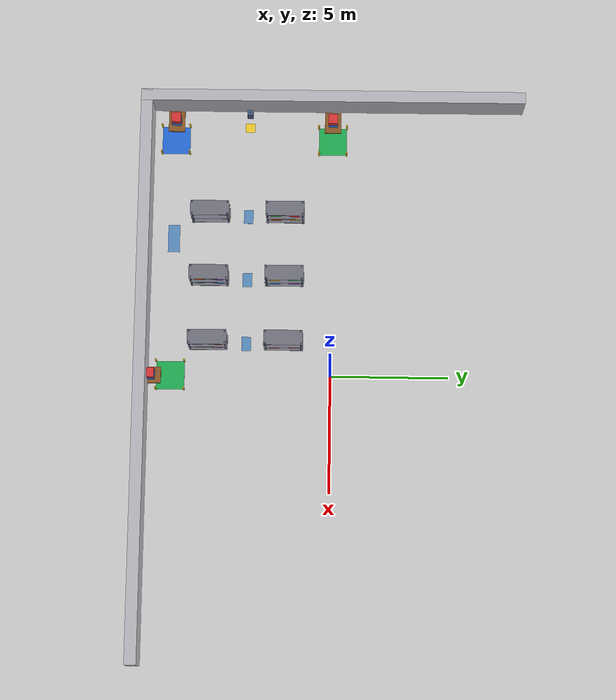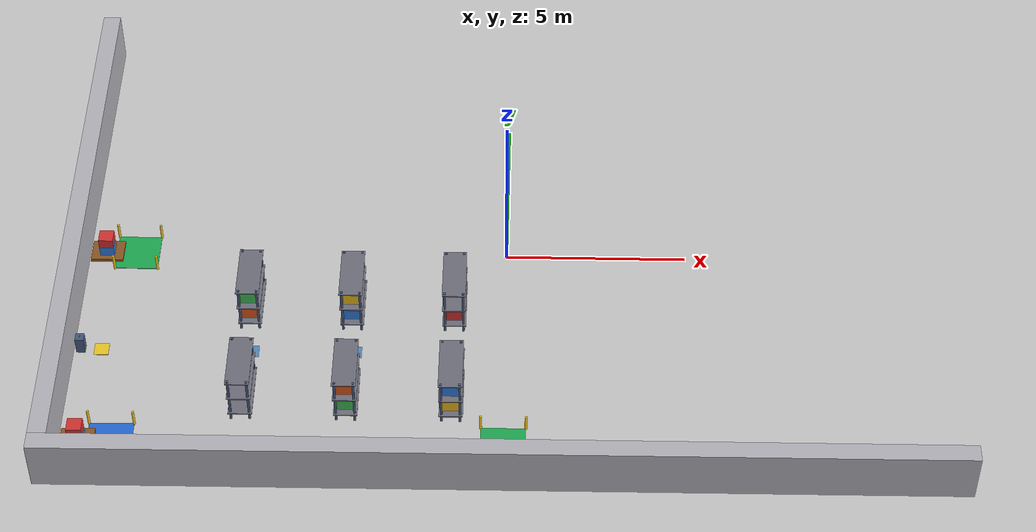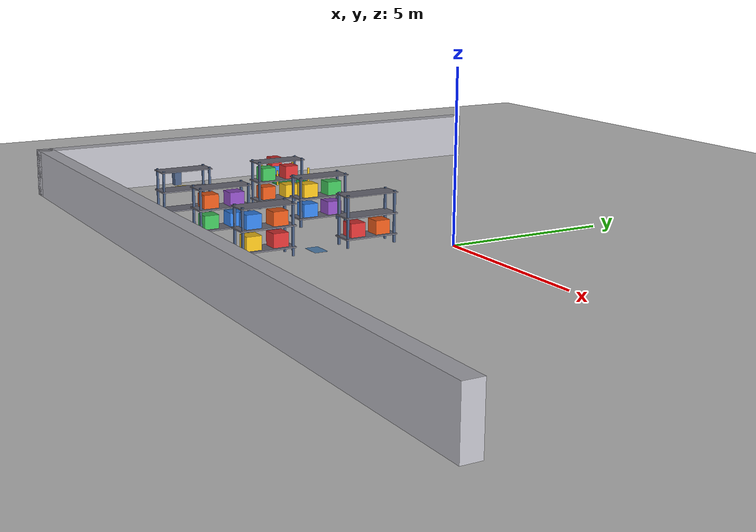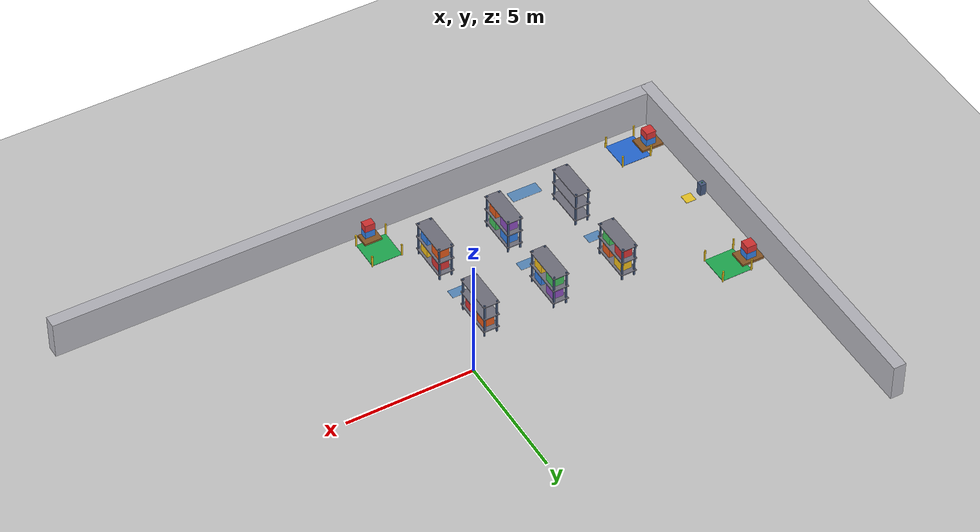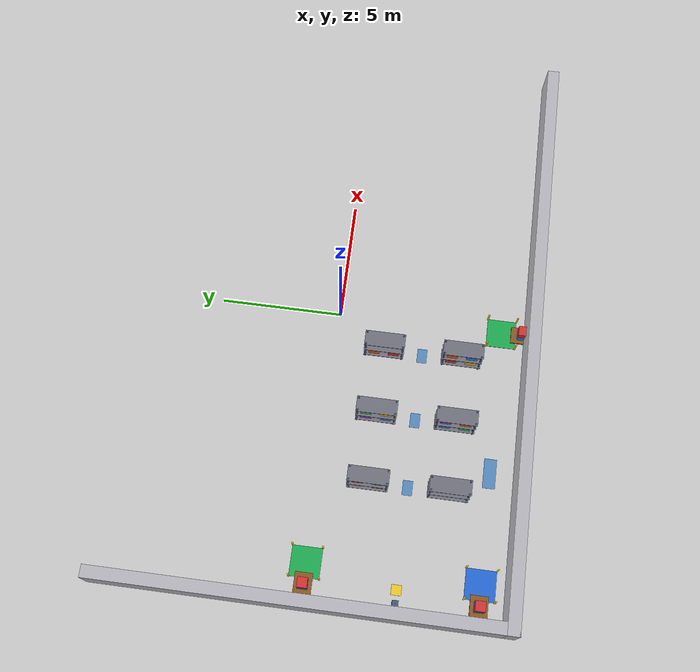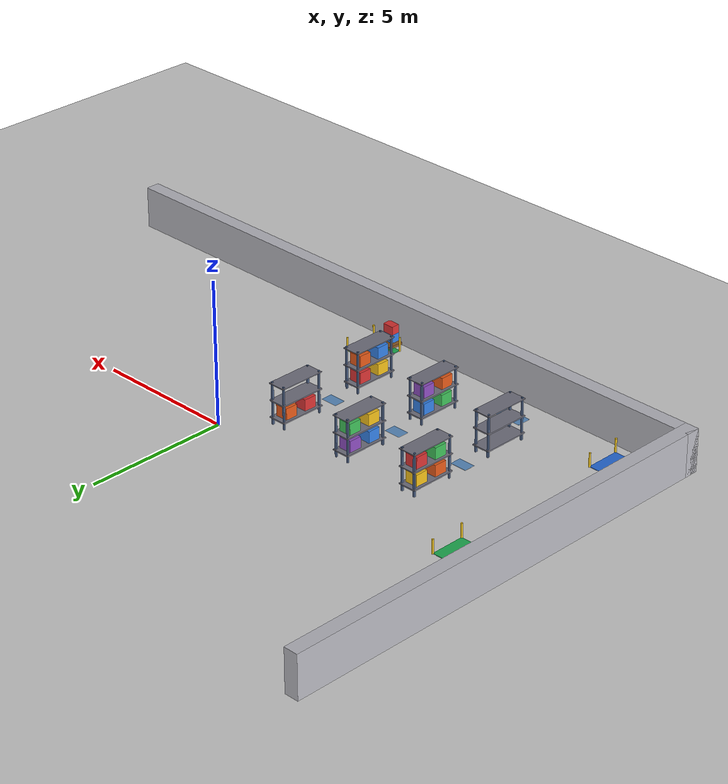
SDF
<sdf version="1.6">
 <world name="warehouse">
  <include><uri>model://ground_plane</uri></include>
  <include><uri>model://sun</uri></include>
  <model name="wall_west">
   <static>true</static>
   <pose>-12.0 0 0.75 0 0 0</pose>
   <link name="wall">
    <visual name="wall_v">
     <geometry><box><size>0.5 16.5 1.5</size></box></geometry>
     <material>
      <ambient>0.72 0.72 0.75 1.0</ambient>
      <diffuse>0.72 0.72 0.75 1.0</diffuse>
      <specular>0.1 0.1 0.1 1</specular>
     </material>
    </visual>
    <collision name="wall_c"><geometry><box><size>0.5 16.5 1.5</size></box></geometry></collision>
   </link>
  </model>
  <model name="wall_south">
   <static>true</static>
   <pose>0 -8.0 0.75 0 0 0</pose>
   <link name="wall">
    <visual name="wall_v">
     <geometry><box><size>24.5 0.5 1.5</size></box></geometry>
     <material>
      <ambient>0.72 0.72 0.75 1.0</ambient>
      <diffuse>0.72 0.72 0.75 1.0</diffuse>
      <specular>0.1 0.1 0.1 1</specular>
     </material>
    </visual>
    <collision name="wall_c"><geometry><box><size>24.5 0.5 1.5</size></box></geometry></collision>
   </link>
  </model>
  <model name="rack_r2_c0">
   <static>true</static>
   <pose>-7.0 -2.0 0 0 0 0</pose>
   <link name="col">
    <collision name="col_c">
     <pose>0 0 0.75 0 0 0</pose>
     <geometry><box><size>0.6 1.0 1.5</size></box></geometry>
    </collision>
   </link>
   <link name="post_0_25_0_75">
    <visual name="post_0_25_0_75_v">
     <pose>0.25 0.75 0.75 0 0 0</pose>
     <geometry><box><size>0.06 0.06 1.5</size></box></geometry>
     <material>
      <ambient>0.28 0.36 0.5 1.0</ambient>
      <diffuse>0.28 0.36 0.5 1.0</diffuse>
      <specular>0.1 0.1 0.1 1</specular>
     </material>
    </visual>
   </link>
   <link name="post_0_25_m0_75">
    <visual name="post_0_25_m0_75_v">
     <pose>0.25 -0.75 0.75 0 0 0</pose>
     <geometry><box><size>0.06 0.06 1.5</size></box></geometry>
     <material>
      <ambient>0.28 0.36 0.5 1.0</ambient>
      <diffuse>0.28 0.36 0.5 1.0</diffuse>
      <specular>0.1 0.1 0.1 1</specular>
     </material>
    </visual>
   </link>
   <link name="post_m0_25_0_75">
    <visual name="post_m0_25_0_75_v">
     <pose>-0.25 0.75 0.75 0 0 0</pose>
     <geometry><box><size>0.06 0.06 1.5</size></box></geometry>
     <material>
      <ambient>0.28 0.36 0.5 1.0</ambient>
      <diffuse>0.28 0.36 0.5 1.0</diffuse>
      <specular>0.1 0.1 0.1 1</specular>
     </material>
    </visual>
   </link>
   <link name="post_m0_25_m0_75">
    <visual name="post_m0_25_m0_75_v">
     <pose>-0.25 -0.75 0.75 0 0 0</pose>
     <geometry><box><size>0.06 0.06 1.5</size></box></geometry>
     <material>
      <ambient>0.28 0.36 0.5 1.0</ambient>
      <diffuse>0.28 0.36 0.5 1.0</diffuse>
      <specular>0.1 0.1 0.1 1</specular>
     </material>
    </visual>
   </link>
   <link name="deck_low">
    <visual name="deck_low_v">
     <pose>0 0 0.25 0 0 0</pose>
     <geometry><box><size>0.64 1.6400000000000001 0.04</size></box></geometry>
     <material>
      <ambient>0.45 0.45 0.5 1.0</ambient>
      <diffuse>0.45 0.45 0.5 1.0</diffuse>
      <specular>0.1 0.1 0.1 1</specular>
     </material>
    </visual>
   </link>
   <link name="deck_mid">
    <visual name="deck_mid_v">
     <pose>0 0 0.85 0 0 0</pose>
     <geometry><box><size>0.64 1.6400000000000001 0.04</size></box></geometry>
     <material>
      <ambient>0.45 0.45 0.5 1.0</ambient>
      <diffuse>0.45 0.45 0.5 1.0</diffuse>
      <specular>0.1 0.1 0.1 1</specular>
     </material>
    </visual>
   </link>
   <link name="top_beam">
    <visual name="top_beam_v">
     <pose>0 0 1.45 0 0 0</pose>
     <geometry><box><size>0.64 1.6400000000000001 0.03</size></box></geometry>
     <material>
      <ambient>0.45 0.45 0.5 1.0</ambient>
      <diffuse>0.45 0.45 0.5 1.0</diffuse>
      <specular>0.1 0.1 0.1 1</specular>
     </material>
    </visual>
   </link>
   <link name="box_l1">
    <visual name="box_l1_v">
     <pose>0 0.4 0.47 0 0 0</pose>
     <geometry><box><size>0.45 0.45 0.4</size></box></geometry>
     <material>
      <ambient>0.95 0.75 0.1 1.0</ambient>
      <diffuse>0.95 0.75 0.1 1.0</diffuse>
      <specular>0.1 0.1 0.1 1</specular>
     </material>
    </visual>
   </link>
   <link name="box_l2">
    <visual name="box_l2_v">
     <pose>0 -0.4 0.47 0 0 0</pose>
     <geometry><box><size>0.45 0.45 0.4</size></box></geometry>
     <material>
      <ambient>0.9 0.35 0.1 1.0</ambient>
      <diffuse>0.9 0.35 0.1 1.0</diffuse>
      <specular>0.1 0.1 0.1 1</specular>
     </material>
    </visual>
   </link>
   <link name="box_h1">
    <visual name="box_h1_v">
     <pose>0 0.4 1.07 0 0 0</pose>
     <geometry><box><size>0.45 0.45 0.4</size></box></geometry>
     <material>
      <ambient>0.85 0.2 0.2 1.0</ambient>
      <diffuse>0.85 0.2 0.2 1.0</diffuse>
      <specular>0.1 0.1 0.1 1</specular>
     </material>
    </visual>
   </link>
   <link name="box_h2">
    <visual name="box_h2_v">
     <pose>0 -0.4 1.07 0 0 0</pose>
     <geometry><box><size>0.45 0.45 0.4</size></box></geometry>
     <material>
      <ambient>0.25 0.75 0.35 1.0</ambient>
      <diffuse>0.25 0.75 0.35 1.0</diffuse>
      <specular>0.1 0.1 0.1 1</specular>
     </material>
    </visual>
   </link>
  </model>
  <model name="rack_r2_c1">
   <static>true</static>
   <pose>-4.2 -2.0 0 0 0 0</pose>
   <link name="col">
    <collision name="col_c">
     <pose>0 0 0.75 0 0 0</pose>
     <geometry><box><size>0.6 1.6 1.5</size></box></geometry>
    </collision>
   </link>
   <link name="post_0_25_0_75">
    <visual name="post_0_25_0_75_v">
     <pose>0.25 0.75 0.75 0 0 0</pose>
     <geometry><box><size>0.06 0.06 1.5</size></box></geometry>
     <material>
      <ambient>0.28 0.36 0.5 1.0</ambient>
      <diffuse>0.28 0.36 0.5 1.0</diffuse>
      <specular>0.1 0.1 0.1 1</specular>
     </material>
    </visual>
   </link>
   <link name="post_0_25_m0_75">
    <visual name="post_0_25_m0_75_v">
     <pose>0.25 -0.75 0.75 0 0 0</pose>
     <geometry><box><size>0.06 0.06 1.5</size></box></geometry>
     <material>
      <ambient>0.28 0.36 0.5 1.0</ambient>
      <diffuse>0.28 0.36 0.5 1.0</diffuse>
      <specular>0.1 0.1 0.1 1</specular>
     </material>
    </visual>
   </link>
   <link name="post_m0_25_0_75">
    <visual name="post_m0_25_0_75_v">
     <pose>-0.25 0.75 0.75 0 0 0</pose>
     <geometry><box><size>0.06 0.06 1.5</size></box></geometry>
     <material>
      <ambient>0.28 0.36 0.5 1.0</ambient>
      <diffuse>0.28 0.36 0.5 1.0</diffuse>
      <specular>0.1 0.1 0.1 1</specular>
     </material>
    </visual>
   </link>
   <link name="post_m0_25_m0_75">
    <visual name="post_m0_25_m0_75_v">
     <pose>-0.25 -0.75 0.75 0 0 0</pose>
     <geometry><box><size>0.06 0.06 1.5</size></box></geometry>
     <material>
      <ambient>0.28 0.36 0.5 1.0</ambient>
      <diffuse>0.28 0.36 0.5 1.0</diffuse>
      <specular>0.1 0.1 0.1 1</specular>
     </material>
    </visual>
   </link>
   <link name="deck_low">
    <visual name="deck_low_v">
     <pose>0 0 0.25 0 0 0</pose>
     <geometry><box><size>0.64 1.6400000000000001 0.04</size></box></geometry>
     <material>
      <ambient>0.45 0.45 0.5 1.0</ambient>
      <diffuse>0.45 0.45 0.5 1.0</diffuse>
      <specular>0.1 0.1 0.1 1</specular>
     </material>
    </visual>
   </link>
   <link name="deck_mid">
    <visual name="deck_mid_v">
     <pose>0 0 0.85 0 0 0</pose>
     <geometry><box><size>0.64 1.6400000000000001 0.04</size></box></geometry>
     <material>
      <ambient>0.45 0.45 0.5 1.0</ambient>
      <diffuse>0.45 0.45 0.5 1.0</diffuse>
      <specular>0.1 0.1 0.1 1</specular>
     </material>
    </visual>
   </link>
   <link name="top_beam">
    <visual name="top_beam_v">
     <pose>0 0 1.45 0 0 0</pose>
     <geometry><box><size>0.64 1.6400000000000001 0.03</size></box></geometry>
     <material>
      <ambient>0.45 0.45 0.5 1.0</ambient>
      <diffuse>0.45 0.45 0.5 1.0</diffuse>
      <specular>0.1 0.1 0.1 1</specular>
     </material>
    </visual>
   </link>
   <link name="box_l1">
    <visual name="box_l1_v">
     <pose>0 0.4 0.47 0 0 0</pose>
     <geometry><box><size>0.45 0.45 0.4</size></box></geometry>
     <material>
      <ambient>0.55 0.3 0.75 1.0</ambient>
      <diffuse>0.55 0.3 0.75 1.0</diffuse>
      <specular>0.1 0.1 0.1 1</specular>
     </material>
    </visual>
   </link>
   <link name="box_l2">
    <visual name="box_l2_v">
     <pose>0 -0.4 0.47 0 0 0</pose>
     <geometry><box><size>0.45 0.45 0.4</size></box></geometry>
     <material>
      <ambient>0.2 0.5 0.9 1.0</ambient>
      <diffuse>0.2 0.5 0.9 1.0</diffuse>
      <specular>0.1 0.1 0.1 1</specular>
     </material>
    </visual>
   </link>
   <link name="box_h1">
    <visual name="box_h1_v">
     <pose>0 0.4 1.07 0 0 0</pose>
     <geometry><box><size>0.45 0.45 0.4</size></box></geometry>
     <material>
      <ambient>0.25 0.75 0.35 1.0</ambient>
      <diffuse>0.25 0.75 0.35 1.0</diffuse>
      <specular>0.1 0.1 0.1 1</specular>
     </material>
    </visual>
   </link>
   <link name="box_h2">
    <visual name="box_h2_v">
     <pose>0 -0.4 1.07 0 0 0</pose>
     <geometry><box><size>0.45 0.45 0.4</size></box></geometry>
     <material>
      <ambient>0.95 0.75 0.1 1.0</ambient>
      <diffuse>0.95 0.75 0.1 1.0</diffuse>
      <specular>0.1 0.1 0.1 1</specular>
     </material>
    </visual>
   </link>
  </model>
  <model name="rack_r2_c2">
   <static>true</static>
   <pose>-1.4 -2.0 0 0 0 0</pose>
   <link name="col">
    <collision name="col_c">
     <pose>0 0 0.75 0 0 0</pose>
     <geometry><box><size>0.6 1.6 1.5</size></box></geometry>
    </collision>
   </link>
   <link name="post_0_25_0_75">
    <visual name="post_0_25_0_75_v">
     <pose>0.25 0.75 0.75 0 0 0</pose>
     <geometry><box><size>0.06 0.06 1.5</size></box></geometry>
     <material>
      <ambient>0.28 0.36 0.5 1.0</ambient>
      <diffuse>0.28 0.36 0.5 1.0</diffuse>
      <specular>0.1 0.1 0.1 1</specular>
     </material>
    </visual>
   </link>
   <link name="post_0_25_m0_75">
    <visual name="post_0_25_m0_75_v">
     <pose>0.25 -0.75 0.75 0 0 0</pose>
     <geometry><box><size>0.06 0.06 1.5</size></box></geometry>
     <material>
      <ambient>0.28 0.36 0.5 1.0</ambient>
      <diffuse>0.28 0.36 0.5 1.0</diffuse>
      <specular>0.1 0.1 0.1 1</specular>
     </material>
    </visual>
   </link>
   <link name="post_m0_25_0_75">
    <visual name="post_m0_25_0_75_v">
     <pose>-0.25 0.75 0.75 0 0 0</pose>
     <geometry><box><size>0.06 0.06 1.5</size></box></geometry>
     <material>
      <ambient>0.28 0.36 0.5 1.0</ambient>
      <diffuse>0.28 0.36 0.5 1.0</diffuse>
      <specular>0.1 0.1 0.1 1</specular>
     </material>
    </visual>
   </link>
   <link name="post_m0_25_m0_75">
    <visual name="post_m0_25_m0_75_v">
     <pose>-0.25 -0.75 0.75 0 0 0</pose>
     <geometry><box><size>0.06 0.06 1.5</size></box></geometry>
     <material>
      <ambient>0.28 0.36 0.5 1.0</ambient>
      <diffuse>0.28 0.36 0.5 1.0</diffuse>
      <specular>0.1 0.1 0.1 1</specular>
     </material>
    </visual>
   </link>
   <link name="deck_low">
    <visual name="deck_low_v">
     <pose>0 0 0.25 0 0 0</pose>
     <geometry><box><size>0.64 1.6400000000000001 0.04</size></box></geometry>
     <material>
      <ambient>0.45 0.45 0.5 1.0</ambient>
      <diffuse>0.45 0.45 0.5 1.0</diffuse>
      <specular>0.1 0.1 0.1 1</specular>
     </material>
    </visual>
   </link>
   <link name="deck_mid">
    <visual name="deck_mid_v">
     <pose>0 0 0.85 0 0 0</pose>
     <geometry><box><size>0.64 1.6400000000000001 0.04</size></box></geometry>
     <material>
      <ambient>0.45 0.45 0.5 1.0</ambient>
      <diffuse>0.45 0.45 0.5 1.0</diffuse>
      <specular>0.1 0.1 0.1 1</specular>
     </material>
    </visual>
   </link>
   <link name="top_beam">
    <visual name="top_beam_v">
     <pose>0 0 1.45 0 0 0</pose>
     <geometry><box><size>0.64 1.6400000000000001 0.03</size></box></geometry>
     <material>
      <ambient>0.45 0.45 0.5 1.0</ambient>
      <diffuse>0.45 0.45 0.5 1.0</diffuse>
      <specular>0.1 0.1 0.1 1</specular>
     </material>
    </visual>
   </link>
   <link name="box_l1">
    <visual name="box_l1_v">
     <pose>0 0.4 0.47 0 0 0</pose>
     <geometry><box><size>0.45 0.45 0.4</size></box></geometry>
     <material>
      <ambient>0.9 0.35 0.1 1.0</ambient>
      <diffuse>0.9 0.35 0.1 1.0</diffuse>
      <specular>0.1 0.1 0.1 1</specular>
     </material>
    </visual>
   </link>
   <link name="box_l2">
    <visual name="box_l2_v">
     <pose>0 -0.4 0.47 0 0 0</pose>
     <geometry><box><size>0.45 0.45 0.4</size></box></geometry>
     <material>
      <ambient>0.85 0.2 0.2 1.0</ambient>
      <diffuse>0.85 0.2 0.2 1.0</diffuse>
      <specular>0.1 0.1 0.1 1</specular>
     </material>
    </visual>
   </link>
  </model>
  <model name="rack_r3_c0">
   <static>true</static>
   <pose>-7.0 -5.2 0 0 0 0</pose>
   <link name="col">
    <collision name="col_c">
     <pose>0 0 0.75 0 0 0</pose>
     <geometry><box><size>0.6 1.0 1.5</size></box></geometry>
    </collision>
   </link>
   <link name="post_0_25_0_75">
    <visual name="post_0_25_0_75_v">
     <pose>0.25 0.75 0.75 0 0 0</pose>
     <geometry><box><size>0.06 0.06 1.5</size></box></geometry>
     <material>
      <ambient>0.28 0.36 0.5 1.0</ambient>
      <diffuse>0.28 0.36 0.5 1.0</diffuse>
      <specular>0.1 0.1 0.1 1</specular>
     </material>
    </visual>
   </link>
   <link name="post_0_25_m0_75">
    <visual name="post_0_25_m0_75_v">
     <pose>0.25 -0.75 0.75 0 0 0</pose>
     <geometry><box><size>0.06 0.06 1.5</size></box></geometry>
     <material>
      <ambient>0.28 0.36 0.5 1.0</ambient>
      <diffuse>0.28 0.36 0.5 1.0</diffuse>
      <specular>0.1 0.1 0.1 1</specular>
     </material>
    </visual>
   </link>
   <link name="post_m0_25_0_75">
    <visual name="post_m0_25_0_75_v">
     <pose>-0.25 0.75 0.75 0 0 0</pose>
     <geometry><box><size>0.06 0.06 1.5</size></box></geometry>
     <material>
      <ambient>0.28 0.36 0.5 1.0</ambient>
      <diffuse>0.28 0.36 0.5 1.0</diffuse>
      <specular>0.1 0.1 0.1 1</specular>
     </material>
    </visual>
   </link>
   <link name="post_m0_25_m0_75">
    <visual name="post_m0_25_m0_75_v">
     <pose>-0.25 -0.75 0.75 0 0 0</pose>
     <geometry><box><size>0.06 0.06 1.5</size></box></geometry>
     <material>
      <ambient>0.28 0.36 0.5 1.0</ambient>
      <diffuse>0.28 0.36 0.5 1.0</diffuse>
      <specular>0.1 0.1 0.1 1</specular>
     </material>
    </visual>
   </link>
   <link name="deck_low">
    <visual name="deck_low_v">
     <pose>0 0 0.25 0 0 0</pose>
     <geometry><box><size>0.64 1.6400000000000001 0.04</size></box></geometry>
     <material>
      <ambient>0.45 0.45 0.5 1.0</ambient>
      <diffuse>0.45 0.45 0.5 1.0</diffuse>
      <specular>0.1 0.1 0.1 1</specular>
     </material>
    </visual>
   </link>
   <link name="deck_mid">
    <visual name="deck_mid_v">
     <pose>0 0 0.85 0 0 0</pose>
     <geometry><box><size>0.64 1.6400000000000001 0.04</size></box></geometry>
     <material>
      <ambient>0.45 0.45 0.5 1.0</ambient>
      <diffuse>0.45 0.45 0.5 1.0</diffuse>
      <specular>0.1 0.1 0.1 1</specular>
     </material>
    </visual>
   </link>
   <link name="top_beam">
    <visual name="top_beam_v">
     <pose>0 0 1.45 0 0 0</pose>
     <geometry><box><size>0.64 1.6400000000000001 0.03</size></box></geometry>
     <material>
      <ambient>0.45 0.45 0.5 1.0</ambient>
      <diffuse>0.45 0.45 0.5 1.0</diffuse>
      <specular>0.1 0.1 0.1 1</specular>
     </material>
    </visual>
   </link>
  </model>
  <model name="rack_r3_c1">
   <static>true</static>
   <pose>-4.2 -5.2 0 0 0 0</pose>
   <link name="col">
    <collision name="col_c">
     <pose>0 0 0.75 0 0 0</pose>
     <geometry><box><size>0.6 1.6 1.5</size></box></geometry>
    </collision>
   </link>
   <link name="post_0_25_0_75">
    <visual name="post_0_25_0_75_v">
     <pose>0.25 0.75 0.75 0 0 0</pose>
     <geometry><box><size>0.06 0.06 1.5</size></box></geometry>
     <material>
      <ambient>0.28 0.36 0.5 1.0</ambient>
      <diffuse>0.28 0.36 0.5 1.0</diffuse>
      <specular>0.1 0.1 0.1 1</specular>
     </material>
    </visual>
   </link>
   <link name="post_0_25_m0_75">
    <visual name="post_0_25_m0_75_v">
     <pose>0.25 -0.75 0.75 0 0 0</pose>
     <geometry><box><size>0.06 0.06 1.5</size></box></geometry>
     <material>
      <ambient>0.28 0.36 0.5 1.0</ambient>
      <diffuse>0.28 0.36 0.5 1.0</diffuse>
      <specular>0.1 0.1 0.1 1</specular>
     </material>
    </visual>
   </link>
   <link name="post_m0_25_0_75">
    <visual name="post_m0_25_0_75_v">
     <pose>-0.25 0.75 0.75 0 0 0</pose>
     <geometry><box><size>0.06 0.06 1.5</size></box></geometry>
     <material>
      <ambient>0.28 0.36 0.5 1.0</ambient>
      <diffuse>0.28 0.36 0.5 1.0</diffuse>
      <specular>0.1 0.1 0.1 1</specular>
     </material>
    </visual>
   </link>
   <link name="post_m0_25_m0_75">
    <visual name="post_m0_25_m0_75_v">
     <pose>-0.25 -0.75 0.75 0 0 0</pose>
     <geometry><box><size>0.06 0.06 1.5</size></box></geometry>
     <material>
      <ambient>0.28 0.36 0.5 1.0</ambient>
      <diffuse>0.28 0.36 0.5 1.0</diffuse>
      <specular>0.1 0.1 0.1 1</specular>
     </material>
    </visual>
   </link>
   <link name="deck_low">
    <visual name="deck_low_v">
     <pose>0 0 0.25 0 0 0</pose>
     <geometry><box><size>0.64 1.6400000000000001 0.04</size></box></geometry>
     <material>
      <ambient>0.45 0.45 0.5 1.0</ambient>
      <diffuse>0.45 0.45 0.5 1.0</diffuse>
      <specular>0.1 0.1 0.1 1</specular>
     </material>
    </visual>
   </link>
   <link name="deck_mid">
    <visual name="deck_mid_v">
     <pose>0 0 0.85 0 0 0</pose>
     <geometry><box><size>0.64 1.6400000000000001 0.04</size></box></geometry>
     <material>
      <ambient>0.45 0.45 0.5 1.0</ambient>
      <diffuse>0.45 0.45 0.5 1.0</diffuse>
      <specular>0.1 0.1 0.1 1</specular>
     </material>
    </visual>
   </link>
   <link name="top_beam">
    <visual name="top_beam_v">
     <pose>0 0 1.45 0 0 0</pose>
     <geometry><box><size>0.64 1.6400000000000001 0.03</size></box></geometry>
     <material>
      <ambient>0.45 0.45 0.5 1.0</ambient>
      <diffuse>0.45 0.45 0.5 1.0</diffuse>
      <specular>0.1 0.1 0.1 1</specular>
     </material>
    </visual>
   </link>
   <link name="box_l1">
    <visual name="box_l1_v">
     <pose>0 0.4 0.47 0 0 0</pose>
     <geometry><box><size>0.45 0.45 0.4</size></box></geometry>
     <material>
      <ambient>0.2 0.5 0.9 1.0</ambient>
      <diffuse>0.2 0.5 0.9 1.0</diffuse>
      <specular>0.1 0.1 0.1 1</specular>
     </material>
    </visual>
   </link>
   <link name="box_l2">
    <visual name="box_l2_v">
     <pose>0 -0.4 0.47 0 0 0</pose>
     <geometry><box><size>0.45 0.45 0.4</size></box></geometry>
     <material>
      <ambient>0.25 0.75 0.35 1.0</ambient>
      <diffuse>0.25 0.75 0.35 1.0</diffuse>
      <specular>0.1 0.1 0.1 1</specular>
     </material>
    </visual>
   </link>
   <link name="box_h1">
    <visual name="box_h1_v">
     <pose>0 0.4 1.07 0 0 0</pose>
     <geometry><box><size>0.45 0.45 0.4</size></box></geometry>
     <material>
      <ambient>0.55 0.3 0.75 1.0</ambient>
      <diffuse>0.55 0.3 0.75 1.0</diffuse>
      <specular>0.1 0.1 0.1 1</specular>
     </material>
    </visual>
   </link>
   <link name="box_h2">
    <visual name="box_h2_v">
     <pose>0 -0.4 1.07 0 0 0</pose>
     <geometry><box><size>0.45 0.45 0.4</size></box></geometry>
     <material>
      <ambient>0.9 0.35 0.1 1.0</ambient>
      <diffuse>0.9 0.35 0.1 1.0</diffuse>
      <specular>0.1 0.1 0.1 1</specular>
     </material>
    </visual>
   </link>
  </model>
  <model name="rack_r3_c2">
   <static>true</static>
   <pose>-1.4 -5.2 0 0 0 0</pose>
   <link name="col">
    <collision name="col_c">
     <pose>0 0 0.75 0 0 0</pose>
     <geometry><box><size>0.6 1.6 1.5</size></box></geometry>
    </collision>
   </link>
   <link name="post_0_25_0_75">
    <visual name="post_0_25_0_75_v">
     <pose>0.25 0.75 0.75 0 0 0</pose>
     <geometry><box><size>0.06 0.06 1.5</size></box></geometry>
     <material>
      <ambient>0.28 0.36 0.5 1.0</ambient>
      <diffuse>0.28 0.36 0.5 1.0</diffuse>
      <specular>0.1 0.1 0.1 1</specular>
     </material>
    </visual>
   </link>
   <link name="post_0_25_m0_75">
    <visual name="post_0_25_m0_75_v">
     <pose>0.25 -0.75 0.75 0 0 0</pose>
     <geometry><box><size>0.06 0.06 1.5</size></box></geometry>
     <material>
      <ambient>0.28 0.36 0.5 1.0</ambient>
      <diffuse>0.28 0.36 0.5 1.0</diffuse>
      <specular>0.1 0.1 0.1 1</specular>
     </material>
    </visual>
   </link>
   <link name="post_m0_25_0_75">
    <visual name="post_m0_25_0_75_v">
     <pose>-0.25 0.75 0.75 0 0 0</pose>
     <geometry><box><size>0.06 0.06 1.5</size></box></geometry>
     <material>
      <ambient>0.28 0.36 0.5 1.0</ambient>
      <diffuse>0.28 0.36 0.5 1.0</diffuse>
      <specular>0.1 0.1 0.1 1</specular>
     </material>
    </visual>
   </link>
   <link name="post_m0_25_m0_75">
    <visual name="post_m0_25_m0_75_v">
     <pose>-0.25 -0.75 0.75 0 0 0</pose>
     <geometry><box><size>0.06 0.06 1.5</size></box></geometry>
     <material>
      <ambient>0.28 0.36 0.5 1.0</ambient>
      <diffuse>0.28 0.36 0.5 1.0</diffuse>
      <specular>0.1 0.1 0.1 1</specular>
     </material>
    </visual>
   </link>
   <link name="deck_low">
    <visual name="deck_low_v">
     <pose>0 0 0.25 0 0 0</pose>
     <geometry><box><size>0.64 1.6400000000000001 0.04</size></box></geometry>
     <material>
      <ambient>0.45 0.45 0.5 1.0</ambient>
      <diffuse>0.45 0.45 0.5 1.0</diffuse>
      <specular>0.1 0.1 0.1 1</specular>
     </material>
    </visual>
   </link>
   <link name="deck_mid">
    <visual name="deck_mid_v">
     <pose>0 0 0.85 0 0 0</pose>
     <geometry><box><size>0.64 1.6400000000000001 0.04</size></box></geometry>
     <material>
      <ambient>0.45 0.45 0.5 1.0</ambient>
      <diffuse>0.45 0.45 0.5 1.0</diffuse>
      <specular>0.1 0.1 0.1 1</specular>
     </material>
    </visual>
   </link>
   <link name="top_beam">
    <visual name="top_beam_v">
     <pose>0 0 1.45 0 0 0</pose>
     <geometry><box><size>0.64 1.6400000000000001 0.03</size></box></geometry>
     <material>
      <ambient>0.45 0.45 0.5 1.0</ambient>
      <diffuse>0.45 0.45 0.5 1.0</diffuse>
      <specular>0.1 0.1 0.1 1</specular>
     </material>
    </visual>
   </link>
   <link name="box_l1">
    <visual name="box_l1_v">
     <pose>0 0.4 0.47 0 0 0</pose>
     <geometry><box><size>0.45 0.45 0.4</size></box></geometry>
     <material>
      <ambient>0.85 0.2 0.2 1.0</ambient>
      <diffuse>0.85 0.2 0.2 1.0</diffuse>
      <specular>0.1 0.1 0.1 1</specular>
     </material>
    </visual>
   </link>
   <link name="box_l2">
    <visual name="box_l2_v">
     <pose>0 -0.4 0.47 0 0 0</pose>
     <geometry><box><size>0.45 0.45 0.4</size></box></geometry>
     <material>
      <ambient>0.95 0.75 0.1 1.0</ambient>
      <diffuse>0.95 0.75 0.1 1.0</diffuse>
      <specular>0.1 0.1 0.1 1</specular>
     </material>
    </visual>
   </link>
   <link name="box_h1">
    <visual name="box_h1_v">
     <pose>0 0.4 1.07 0 0 0</pose>
     <geometry><box><size>0.45 0.45 0.4</size></box></geometry>
     <material>
      <ambient>0.9 0.35 0.1 1.0</ambient>
      <diffuse>0.9 0.35 0.1 1.0</diffuse>
      <specular>0.1 0.1 0.1 1</specular>
     </material>
    </visual>
   </link>
   <link name="box_h2">
    <visual name="box_h2_v">
     <pose>0 -0.4 1.07 0 0 0</pose>
     <geometry><box><size>0.45 0.45 0.4</size></box></geometry>
     <material>
      <ambient>0.2 0.5 0.9 1.0</ambient>
      <diffuse>0.2 0.5 0.9 1.0</diffuse>
      <specular>0.1 0.1 0.1 1</specular>
     </material>
    </visual>
   </link>
  </model>
  <model name="station_pickup_w">
   <static>true</static>
   <pose>-10.4 0.0 0 0 0 0.0</pose>
   <link name="zone">
    <visual name="zone_v">
     <pose>0 0 0.01 0 0 0</pose>
     <geometry><box><size>1.2 1.2 0.02</size></box></geometry>
     <material>
      <ambient>0.12 0.68 0.32 1.0</ambient>
      <diffuse>0.12 0.68 0.32 1.0</diffuse>
      <specular>0.1 0.1 0.1 1</specular>
     </material>
    </visual>
   </link>
   <link name="stopline">
    <visual name="stopline_v">
     <pose>0 0.28 0.011 0 0 0</pose>
     <geometry><box><size>1.1 0.06 0.012</size></box></geometry>
     <material>
      <ambient>0.95 0.95 0.95 1.0</ambient>
      <diffuse>0.95 0.95 0.95 1.0</diffuse>
      <specular>0.1 0.1 0.1 1</specular>
     </material>
    </visual>
   </link>
   <link name="bollard_0_6_0_6">
    <visual name="bollard_0_6_0_6_v">
     <pose>0.6 0.6 0.25 0 0 0</pose>
     <geometry><cylinder><radius>0.035</radius><length>0.5</length></cylinder></geometry>
     <material>
      <ambient>0.92 0.75 0.12 1.0</ambient>
      <diffuse>0.92 0.75 0.12 1.0</diffuse>
      <specular>0.1 0.1 0.1 1</specular>
     </material>
    </visual>
   </link>
   <link name="bollard_0_6_m0_6">
    <visual name="bollard_0_6_m0_6_v">
     <pose>0.6 -0.6 0.25 0 0 0</pose>
     <geometry><cylinder><radius>0.035</radius><length>0.5</length></cylinder></geometry>
     <material>
      <ambient>0.92 0.75 0.12 1.0</ambient>
      <diffuse>0.92 0.75 0.12 1.0</diffuse>
      <specular>0.1 0.1 0.1 1</specular>
     </material>
    </visual>
   </link>
   <link name="bollard_m0_6_0_6">
    <visual name="bollard_m0_6_0_6_v">
     <pose>-0.6 0.6 0.25 0 0 0</pose>
     <geometry><cylinder><radius>0.035</radius><length>0.5</length></cylinder></geometry>
     <material>
      <ambient>0.92 0.75 0.12 1.0</ambient>
      <diffuse>0.92 0.75 0.12 1.0</diffuse>
      <specular>0.1 0.1 0.1 1</specular>
     </material>
    </visual>
   </link>
   <link name="bollard_m0_6_m0_6">
    <visual name="bollard_m0_6_m0_6_v">
     <pose>-0.6 -0.6 0.25 0 0 0</pose>
     <geometry><cylinder><radius>0.035</radius><length>0.5</length></cylinder></geometry>
     <material>
      <ambient>0.92 0.75 0.12 1.0</ambient>
      <diffuse>0.92 0.75 0.12 1.0</diffuse>
      <specular>0.1 0.1 0.1 1</specular>
     </material>
    </visual>
   </link>
   <link name="pallet">
    <visual name="pallet_v">
     <pose>-0.85 0 0.05 0 0 0</pose>
     <geometry><box><size>0.9 0.7 0.1</size></box></geometry>
     <material>
      <ambient>0.55 0.35 0.15 1.0</ambient>
      <diffuse>0.55 0.35 0.15 1.0</diffuse>
      <specular>0.1 0.1 0.1 1</specular>
     </material>
    </visual>
    <collision name="pallet_c">
     <pose>-0.85 0 0.05 0 0 0</pose>
     <geometry><box><size>0.9 0.7 0.1</size></box></geometry>
    </collision>
   </link>
   <link name="goods1">
    <visual name="goods1_v">
     <pose>-0.85 0 0.25 0 0 0</pose>
     <geometry><box><size>0.4 0.4 0.3</size></box></geometry>
     <material>
      <ambient>0.2 0.5 0.9 1.0</ambient>
      <diffuse>0.2 0.5 0.9 1.0</diffuse>
      <specular>0.1 0.1 0.1 1</specular>
     </material>
    </visual>
    <collision name="goods1_c">
     <pose>-0.85 0 0.25 0 0 0</pose>
     <geometry><box><size>0.4 0.4 0.3</size></box></geometry>
    </collision>
   </link>
   <link name="goods2">
    <visual name="goods2_v">
     <pose>-0.85 0 0.55 0 0 0</pose>
     <geometry><box><size>0.4 0.4 0.3</size></box></geometry>
     <material>
      <ambient>0.85 0.2 0.2 1.0</ambient>
      <diffuse>0.85 0.2 0.2 1.0</diffuse>
      <specular>0.1 0.1 0.1 1</specular>
     </material>
    </visual>
    <collision name="goods2_c">
     <pose>-0.85 0 0.55 0 0 0</pose>
     <geometry><box><size>0.4 0.4 0.3</size></box></geometry>
    </collision>
   </link>
  </model>
  <model name="station_pickup_s">
   <static>true</static>
   <pose>0.0 -6.8 0 0 0 1.5707963</pose>
   <link name="zone">
    <visual name="zone_v">
     <pose>0 0 0.01 0 0 0</pose>
     <geometry><box><size>1.2 1.2 0.02</size></box></geometry>
     <material>
      <ambient>0.12 0.68 0.32 1.0</ambient>
      <diffuse>0.12 0.68 0.32 1.0</diffuse>
      <specular>0.1 0.1 0.1 1</specular>
     </material>
    </visual>
   </link>
   <link name="stopline">
    <visual name="stopline_v">
     <pose>0 0.28 0.011 0 0 0</pose>
     <geometry><box><size>1.1 0.06 0.012</size></box></geometry>
     <material>
      <ambient>0.95 0.95 0.95 1.0</ambient>
      <diffuse>0.95 0.95 0.95 1.0</diffuse>
      <specular>0.1 0.1 0.1 1</specular>
     </material>
    </visual>
   </link>
   <link name="bollard_0_6_0_6">
    <visual name="bollard_0_6_0_6_v">
     <pose>0.6 0.6 0.25 0 0 0</pose>
     <geometry><cylinder><radius>0.035</radius><length>0.5</length></cylinder></geometry>
     <material>
      <ambient>0.92 0.75 0.12 1.0</ambient>
      <diffuse>0.92 0.75 0.12 1.0</diffuse>
      <specular>0.1 0.1 0.1 1</specular>
     </material>
    </visual>
   </link>
   <link name="bollard_0_6_m0_6">
    <visual name="bollard_0_6_m0_6_v">
     <pose>0.6 -0.6 0.25 0 0 0</pose>
     <geometry><cylinder><radius>0.035</radius><length>0.5</length></cylinder></geometry>
     <material>
      <ambient>0.92 0.75 0.12 1.0</ambient>
      <diffuse>0.92 0.75 0.12 1.0</diffuse>
      <specular>0.1 0.1 0.1 1</specular>
     </material>
    </visual>
   </link>
   <link name="bollard_m0_6_0_6">
    <visual name="bollard_m0_6_0_6_v">
     <pose>-0.6 0.6 0.25 0 0 0</pose>
     <geometry><cylinder><radius>0.035</radius><length>0.5</length></cylinder></geometry>
     <material>
      <ambient>0.92 0.75 0.12 1.0</ambient>
      <diffuse>0.92 0.75 0.12 1.0</diffuse>
      <specular>0.1 0.1 0.1 1</specular>
     </material>
    </visual>
   </link>
   <link name="bollard_m0_6_m0_6">
    <visual name="bollard_m0_6_m0_6_v">
     <pose>-0.6 -0.6 0.25 0 0 0</pose>
     <geometry><cylinder><radius>0.035</radius><length>0.5</length></cylinder></geometry>
     <material>
      <ambient>0.92 0.75 0.12 1.0</ambient>
      <diffuse>0.92 0.75 0.12 1.0</diffuse>
      <specular>0.1 0.1 0.1 1</specular>
     </material>
    </visual>
   </link>
   <link name="pallet">
    <visual name="pallet_v">
     <pose>-0.85 0 0.05 0 0 0</pose>
     <geometry><box><size>0.9 0.7 0.1</size></box></geometry>
     <material>
      <ambient>0.55 0.35 0.15 1.0</ambient>
      <diffuse>0.55 0.35 0.15 1.0</diffuse>
      <specular>0.1 0.1 0.1 1</specular>
     </material>
    </visual>
    <collision name="pallet_c">
     <pose>-0.85 0 0.05 0 0 0</pose>
     <geometry><box><size>0.9 0.7 0.1</size></box></geometry>
    </collision>
   </link>
   <link name="goods1">
    <visual name="goods1_v">
     <pose>-0.85 0 0.25 0 0 0</pose>
     <geometry><box><size>0.4 0.4 0.3</size></box></geometry>
     <material>
      <ambient>0.2 0.5 0.9 1.0</ambient>
      <diffuse>0.2 0.5 0.9 1.0</diffuse>
      <specular>0.1 0.1 0.1 1</specular>
     </material>
    </visual>
    <collision name="goods1_c">
     <pose>-0.85 0 0.25 0 0 0</pose>
     <geometry><box><size>0.4 0.4 0.3</size></box></geometry>
    </collision>
   </link>
   <link name="goods2">
    <visual name="goods2_v">
     <pose>-0.85 0 0.55 0 0 0</pose>
     <geometry><box><size>0.4 0.4 0.3</size></box></geometry>
     <material>
      <ambient>0.85 0.2 0.2 1.0</ambient>
      <diffuse>0.85 0.2 0.2 1.0</diffuse>
      <specular>0.1 0.1 0.1 1</specular>
     </material>
    </visual>
    <collision name="goods2_c">
     <pose>-0.85 0 0.55 0 0 0</pose>
     <geometry><box><size>0.4 0.4 0.3</size></box></geometry>
    </collision>
   </link>
  </model>
  <model name="station_dropoff_sw">
   <static>true</static>
   <pose>-10.4 -6.8 0 0 0 0.0</pose>
   <link name="zone">
    <visual name="zone_v">
     <pose>0 0 0.01 0 0 0</pose>
     <geometry><box><size>1.2 1.2 0.02</size></box></geometry>
     <material>
      <ambient>0.15 0.42 0.85 1.0</ambient>
      <diffuse>0.15 0.42 0.85 1.0</diffuse>
      <specular>0.1 0.1 0.1 1</specular>
     </material>
    </visual>
   </link>
   <link name="stopline">
    <visual name="stopline_v">
     <pose>0 0.28 0.011 0 0 0</pose>
     <geometry><box><size>1.1 0.06 0.012</size></box></geometry>
     <material>
      <ambient>0.95 0.95 0.95 1.0</ambient>
      <diffuse>0.95 0.95 0.95 1.0</diffuse>
      <specular>0.1 0.1 0.1 1</specular>
     </material>
    </visual>
   </link>
   <link name="bollard_0_6_0_6">
    <visual name="bollard_0_6_0_6_v">
     <pose>0.6 0.6 0.25 0 0 0</pose>
     <geometry><cylinder><radius>0.035</radius><length>0.5</length></cylinder></geometry>
     <material>
      <ambient>0.92 0.75 0.12 1.0</ambient>
      <diffuse>0.92 0.75 0.12 1.0</diffuse>
      <specular>0.1 0.1 0.1 1</specular>
     </material>
    </visual>
   </link>
   <link name="bollard_0_6_m0_6">
    <visual name="bollard_0_6_m0_6_v">
     <pose>0.6 -0.6 0.25 0 0 0</pose>
     <geometry><cylinder><radius>0.035</radius><length>0.5</length></cylinder></geometry>
     <material>
      <ambient>0.92 0.75 0.12 1.0</ambient>
      <diffuse>0.92 0.75 0.12 1.0</diffuse>
      <specular>0.1 0.1 0.1 1</specular>
     </material>
    </visual>
   </link>
   <link name="bollard_m0_6_0_6">
    <visual name="bollard_m0_6_0_6_v">
     <pose>-0.6 0.6 0.25 0 0 0</pose>
     <geometry><cylinder><radius>0.035</radius><length>0.5</length></cylinder></geometry>
     <material>
      <ambient>0.92 0.75 0.12 1.0</ambient>
      <diffuse>0.92 0.75 0.12 1.0</diffuse>
      <specular>0.1 0.1 0.1 1</specular>
     </material>
    </visual>
   </link>
   <link name="bollard_m0_6_m0_6">
    <visual name="bollard_m0_6_m0_6_v">
     <pose>-0.6 -0.6 0.25 0 0 0</pose>
     <geometry><cylinder><radius>0.035</radius><length>0.5</length></cylinder></geometry>
     <material>
      <ambient>0.92 0.75 0.12 1.0</ambient>
      <diffuse>0.92 0.75 0.12 1.0</diffuse>
      <specular>0.1 0.1 0.1 1</specular>
     </material>
    </visual>
   </link>
   <link name="pallet">
    <visual name="pallet_v">
     <pose>-0.85 0 0.05 0 0 0</pose>
     <geometry><box><size>0.9 0.7 0.1</size></box></geometry>
     <material>
      <ambient>0.55 0.35 0.15 1.0</ambient>
      <diffuse>0.55 0.35 0.15 1.0</diffuse>
      <specular>0.1 0.1 0.1 1</specular>
     </material>
    </visual>
    <collision name="pallet_c">
     <pose>-0.85 0 0.05 0 0 0</pose>
     <geometry><box><size>0.9 0.7 0.1</size></box></geometry>
    </collision>
   </link>
   <link name="goods1">
    <visual name="goods1_v">
     <pose>-0.85 0 0.25 0 0 0</pose>
     <geometry><box><size>0.4 0.4 0.3</size></box></geometry>
     <material>
      <ambient>0.2 0.5 0.9 1.0</ambient>
      <diffuse>0.2 0.5 0.9 1.0</diffuse>
      <specular>0.1 0.1 0.1 1</specular>
     </material>
    </visual>
    <collision name="goods1_c">
     <pose>-0.85 0 0.25 0 0 0</pose>
     <geometry><box><size>0.4 0.4 0.3</size></box></geometry>
    </collision>
   </link>
   <link name="goods2">
    <visual name="goods2_v">
     <pose>-0.85 0 0.55 0 0 0</pose>
     <geometry><box><size>0.4 0.4 0.3</size></box></geometry>
     <material>
      <ambient>0.85 0.2 0.2 1.0</ambient>
      <diffuse>0.85 0.2 0.2 1.0</diffuse>
      <specular>0.1 0.1 0.1 1</specular>
     </material>
    </visual>
    <collision name="goods2_c">
     <pose>-0.85 0 0.55 0 0 0</pose>
     <geometry><box><size>0.4 0.4 0.3</size></box></geometry>
    </collision>
   </link>
  </model>
  <model name="charger_3">
   <static>true</static>
   <pose>-11.0 -3.6 0 0 0 3.1415927</pose>
   <link name="pad">
    <visual name="pad_v">
     <pose>0 0 0.01 0 0 0</pose>
     <geometry><box><size>0.4 0.4 0.02</size></box></geometry>
     <material>
      <ambient>0.95 0.8 0.15 1.0</ambient>
      <diffuse>0.95 0.8 0.15 1.0</diffuse>
      <specular>0.1 0.1 0.1 1</specular>
     </material>
    </visual>
   </link>
   <link name="body">
    <visual name="body_v">
     <pose>0.55 0 0.25 0 0 0</pose>
     <geometry><box><size>0.24 0.24 0.5</size></box></geometry>
     <material>
      <ambient>0.28 0.36 0.5 1.0</ambient>
      <diffuse>0.28 0.36 0.5 1.0</diffuse>
      <specular>0.1 0.1 0.1 1</specular>
     </material>
    </visual>
    <collision name="body_c">
     <pose>0.55 0 0.25 0 0 0</pose>
     <geometry><box><size>0.24 0.24 0.5</size></box></geometry>
    </collision>
   </link>
   <link name="led">
    <visual name="led_v">
     <pose>0.55 0 0.53 0 0 0</pose>
     <geometry><cylinder><radius>0.02</radius><length>0.03</length></cylinder></geometry>
     <material>
      <ambient>0.12 0.68 0.32 1.0</ambient>
      <diffuse>0.12 0.68 0.32 1.0</diffuse>
      <specular>0.1 0.1 0.1 1</specular>
     </material>
    </visual>
    <collision name="led_c">
     <pose>0.55 0 0.53 0 0 0</pose>
     <geometry><cylinder><radius>0.02</radius><length>0.03</length></cylinder></geometry>
    </collision>
   </link>
  </model>
  <model name="rack_bay_6">
   <static>true</static>
   <pose>-7.0 -3.6 0 0 0 0</pose>
   <link name="pad">
    <visual name="pad_v">
     <pose>0 0 0.005 0 0 0</pose>
     <geometry><box><size>0.6 0.4 0.005</size></box></geometry>
     <material>
      <ambient>0.35 0.55 0.75 1.0</ambient>
      <diffuse>0.35 0.55 0.75 1.0</diffuse>
      <specular>0.1 0.1 0.1 1</specular>
     </material>
    </visual>
   </link>
  </model>
  <model name="rack_bay_7">
   <static>true</static>
   <pose>-4.2 -3.6 0 0 0 0</pose>
   <link name="pad">
    <visual name="pad_v">
     <pose>0 0 0.005 0 0 0</pose>
     <geometry><box><size>0.6 0.4 0.005</size></box></geometry>
     <material>
      <ambient>0.35 0.55 0.75 1.0</ambient>
      <diffuse>0.35 0.55 0.75 1.0</diffuse>
      <specular>0.1 0.1 0.1 1</specular>
     </material>
    </visual>
   </link>
  </model>
  <model name="rack_bay_8">
   <static>true</static>
   <pose>-1.4 -3.6 0 0 0 0</pose>
   <link name="pad">
    <visual name="pad_v">
     <pose>0 0 0.005 0 0 0</pose>
     <geometry><box><size>0.6 0.4 0.005</size></box></geometry>
     <material>
      <ambient>0.35 0.55 0.75 1.0</ambient>
      <diffuse>0.35 0.55 0.75 1.0</diffuse>
      <specular>0.1 0.1 0.1 1</specular>
     </material>
    </visual>
   </link>
  </model>
  <model name="port_pad_2">
   <static>true</static>
   <pose>-6.0 -6.8 0 0 0 0</pose>
   <link name="pad">
    <visual name="pad_v">
     <pose>0 0 0.005 0 0 0</pose>
     <geometry><box><size>1.2 0.5 0.005</size></box></geometry>
     <material>
      <ambient>0.35 0.55 0.75 1.0</ambient>
      <diffuse>0.35 0.55 0.75 1.0</diffuse>
      <specular>0.1 0.1 0.1 1</specular>
     </material>
    </visual>
   </link>
  </model>
  <model name="fire_ext_2">
   <static>true</static>
   <pose>0 -7.5 0 0 0 0</pose>
   <link name="body">
    <visual name="body_v">
     <pose>0 0 0.25 0 0 0</pose>
     <geometry><cylinder><radius>0.05</radius><length>0.5</length></cylinder></geometry>
     <material>
      <ambient>0.85 0.2 0.2 1.0</ambient>
      <diffuse>0.85 0.2 0.2 1.0</diffuse>
      <specular>0.1 0.1 0.1 1</specular>
     </material>
    </visual>
    <collision name="body_c">
     <pose>0 0 0.25 0 0 0</pose>
     <geometry><cylinder><radius>0.05</radius><length>0.5</length></cylinder></geometry>
    </collision>
   </link>
   <link name="top">
    <visual name="top_v">
     <pose>0 0 0.52 0 0 0</pose>
     <geometry><cylinder><radius>0.02</radius><length>0.05</length></cylinder></geometry>
     <material>
      <ambient>0.12 0.12 0.15 1.0</ambient>
      <diffuse>0.12 0.12 0.15 1.0</diffuse>
      <specular>0.1 0.1 0.1 1</specular>
     </material>
    </visual>
    <collision name="top_c">
     <pose>0 0 0.52 0 0 0</pose>
     <geometry><cylinder><radius>0.02</radius><length>0.05</length></cylinder></geometry>
    </collision>
   </link>
  </model>
 </world>
</sdf>
